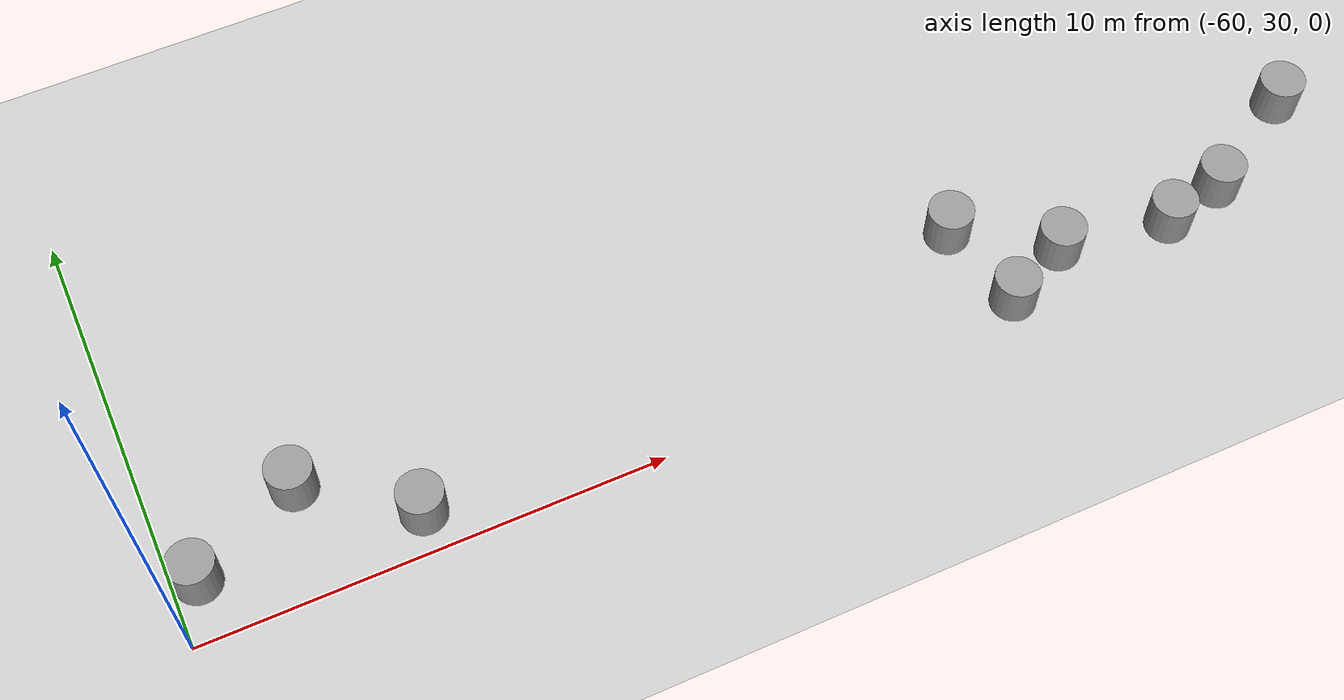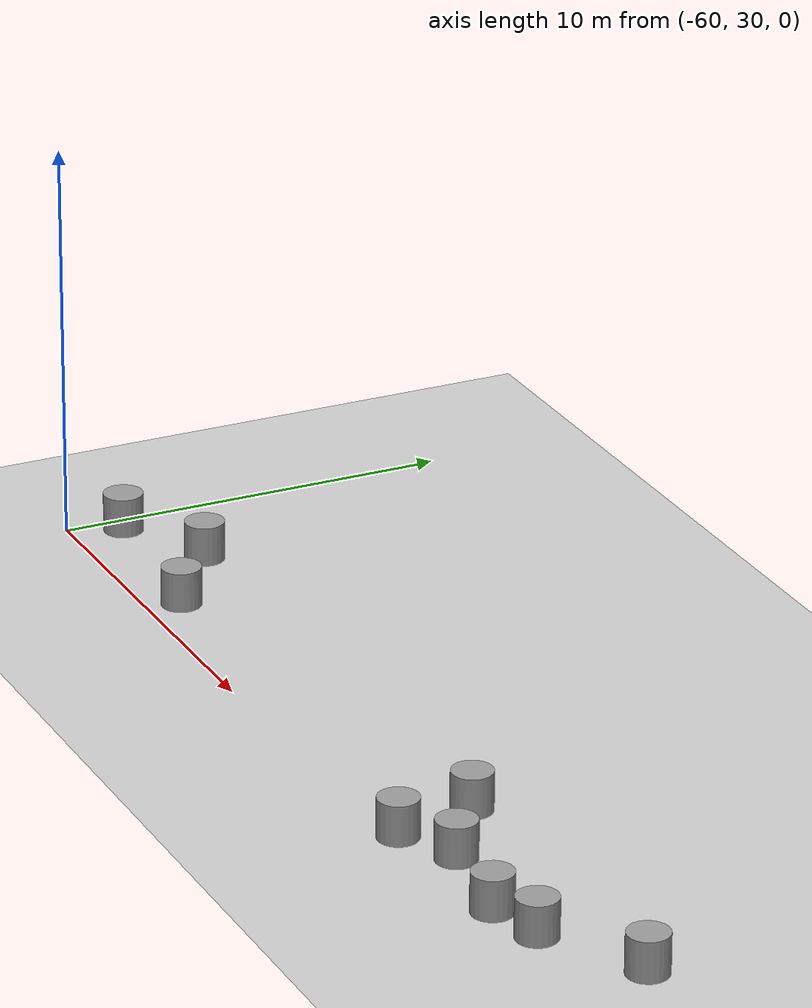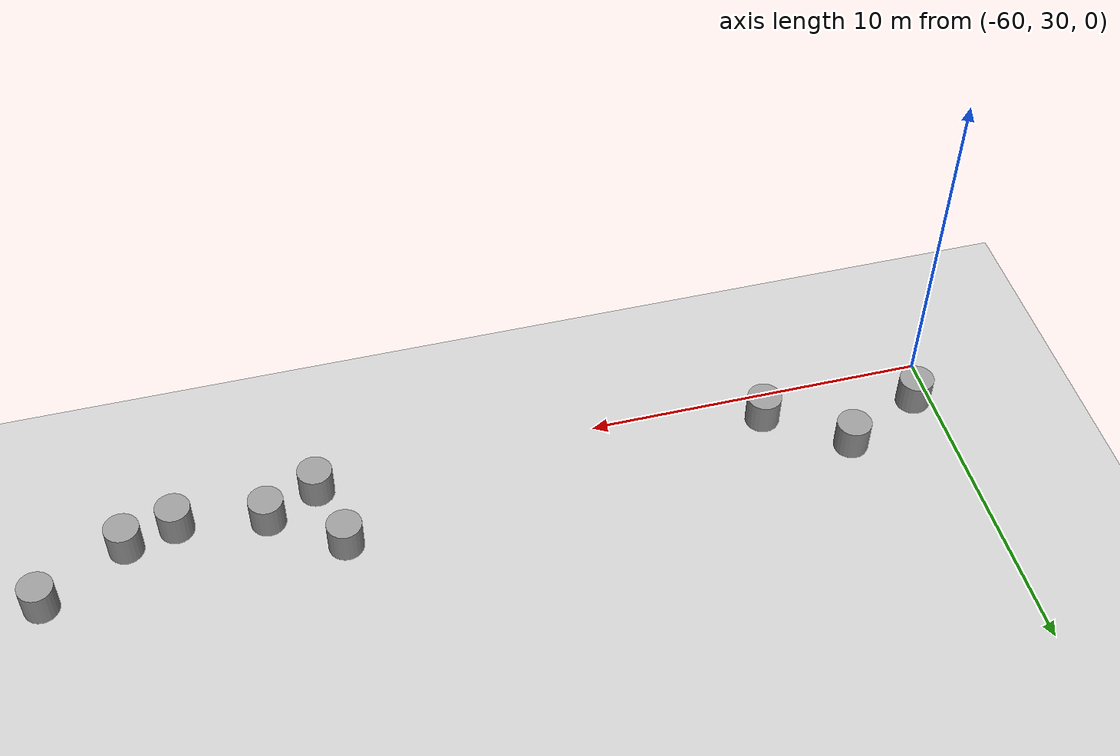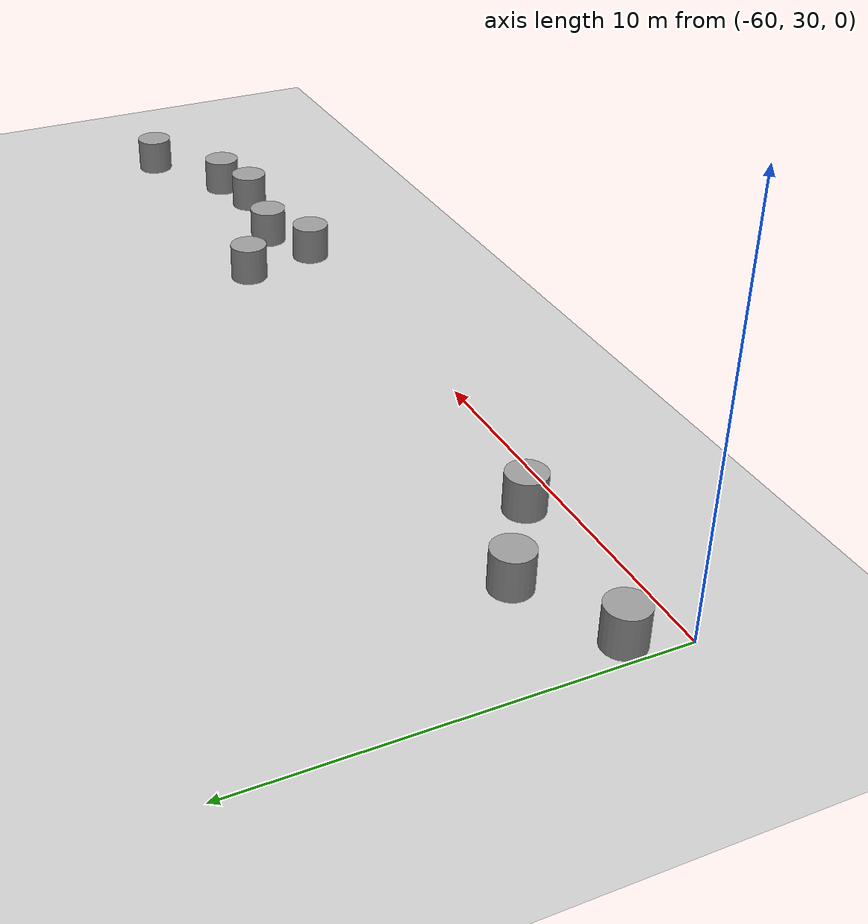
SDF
<sdf version="1.7">
 <world name="default">
  <model name="ground_plane">
   <static>1</static>
   <link name="link">
    <collision name="collision">
     <geometry><plane><normal>0 0 1</normal><size>300 300</size></plane></geometry>
     <surface><friction><ode><mu>100</mu><mu2>50</mu2></ode></friction></surface>
    </collision>
    <visual name="visual">
     <cast_shadows>0</cast_shadows>
     <geometry><plane><normal>0 0 1</normal><size>300 300</size></plane></geometry>
     <material>
      <script><uri>file://media/materials/scripts/gazebo.material</uri><name>Gazebo/Grey</name></script>
     </material>
    </visual>
   </link>
  </model>
  <model name="unit_cylinder_14">
   <pose>-37.7671 30.699 0.499883 0 -0 0</pose>
   <link name="link">
    <inertial>
     <mass>1</mass>
     <inertia><ixx>0.145833</ixx><ixy>0</ixy><ixz>0</ixz><iyy>0.145833</iyy><iyz>0</iyz><izz>0.125</izz></inertia>
    </inertial>
    <collision name="collision">
     <geometry><cylinder><radius>0.5</radius><length>1</length></cylinder></geometry>
    </collision>
    <visual name="visual">
     <geometry><cylinder><radius>0.5</radius><length>1</length></cylinder></geometry>
     <material>
      <script><name>Gazebo/Grey</name><uri>file://media/materials/scripts/gazebo.material</uri></script>
     </material>
    </visual>
   </link>
  </model>
  <model name="unit_cylinder_15">
   <pose>-36.3359 31.0542 0.499883 0 -0 0.00178</pose>
   <link name="link">
    <inertial>
     <mass>1</mass>
     <inertia><ixx>0.145833</ixx><ixy>0</ixy><ixz>0</ixz><iyy>0.145833</iyy><iyz>0</iyz><izz>0.125</izz></inertia>
    </inertial>
    <collision name="collision">
     <geometry><cylinder><radius>0.5</radius><length>1</length></cylinder></geometry>
    </collision>
    <visual name="visual">
     <geometry><cylinder><radius>0.5</radius><length>1</length></cylinder></geometry>
     <material>
      <script><name>Gazebo/Grey</name><uri>file://media/materials/scripts/gazebo.material</uri></script>
     </material>
    </visual>
   </link>
  </model>
  <model name="unit_cylinder_17">
   <pose>-40.2876 31.0676 0.499883 0 -0 0</pose>
   <link name="link">
    <inertial>
     <mass>1</mass>
     <inertia><ixx>0.145833</ixx><ixy>0</ixy><ixz>0</ixz><iyy>0.145833</iyy><iyz>0</iyz><izz>0.125</izz></inertia>
    </inertial>
    <collision name="collision">
     <geometry><cylinder><radius>0.5</radius><length>1</length></cylinder></geometry>
    </collision>
    <visual name="visual">
     <geometry><cylinder><radius>0.5</radius><length>1</length></cylinder></geometry>
     <material>
      <script><name>Gazebo/Grey</name><uri>file://media/materials/scripts/gazebo.material</uri></script>
     </material>
    </visual>
   </link>
  </model>
  <model name="unit_cylinder_18">
   <pose>-41.7746 30.3646 0.499883 0 -0 0</pose>
   <link name="link">
    <inertial>
     <mass>1</mass>
     <inertia><ixx>0.145833</ixx><ixy>0</ixy><ixz>0</ixz><iyy>0.145833</iyy><iyz>0</iyz><izz>0.125</izz></inertia>
    </inertial>
    <collision name="collision">
     <geometry><cylinder><radius>0.5</radius><length>1</length></cylinder></geometry>
    </collision>
    <visual name="visual">
     <geometry><cylinder><radius>0.5</radius><length>1</length></cylinder></geometry>
     <material>
      <script><name>Gazebo/Grey</name><uri>file://media/materials/scripts/gazebo.material</uri></script>
     </material>
    </visual>
   </link>
  </model>
  <model name="unit_cylinder_19">
   <pose>-54.9089 30.8669 0.499883 0 -0 0</pose>
   <link name="link">
    <inertial>
     <mass>1</mass>
     <inertia><ixx>0.145833</ixx><ixy>0</ixy><ixz>0</ixz><iyy>0.145833</iyy><iyz>0</iyz><izz>0.125</izz></inertia>
    </inertial>
    <collision name="collision">
     <geometry><cylinder><radius>0.5</radius><length>1</length></cylinder></geometry>
    </collision>
    <visual name="visual">
     <geometry><cylinder><radius>0.5</radius><length>1</length></cylinder></geometry>
     <material>
      <script><name>Gazebo/Grey</name><uri>file://media/materials/scripts/gazebo.material</uri></script>
     </material>
    </visual>
   </link>
  </model>
  <model name="unit_cylinder_22">
   <pose>-59.4691 31.2926 0.499883 0 -0 0</pose>
   <link name="link">
    <inertial>
     <mass>1</mass>
     <inertia><ixx>0.145833</ixx><ixy>0</ixy><ixz>0</ixz><iyy>0.145833</iyy><iyz>0</iyz><izz>0.125</izz></inertia>
    </inertial>
    <collision name="collision">
     <geometry><cylinder><radius>0.5</radius><length>1</length></cylinder></geometry>
    </collision>
    <visual name="visual">
     <geometry><cylinder><radius>0.5</radius><length>1</length></cylinder></geometry>
     <material>
      <script><name>Gazebo/Grey</name><uri>file://media/materials/scripts/gazebo.material</uri></script>
     </material>
    </visual>
   </link>
  </model>
  <model name="unit_cylinder_23">
   <pose>-57.0882 32.4362 0.499883 0 -0 0</pose>
   <link name="link">
    <inertial>
     <mass>1</mass>
     <inertia><ixx>0.145833</ixx><ixy>0</ixy><ixz>0</ixz><iyy>0.145833</iyy><iyz>0</iyz><izz>0.125</izz></inertia>
    </inertial>
    <collision name="collision">
     <geometry><cylinder><radius>0.5</radius><length>1</length></cylinder></geometry>
    </collision>
    <visual name="visual">
     <geometry><cylinder><radius>0.5</radius><length>1</length></cylinder></geometry>
     <material>
      <script><name>Gazebo/Grey</name><uri>file://media/materials/scripts/gazebo.material</uri></script>
     </material>
    </visual>
   </link>
  </model>
  <model name="unit_cylinder_63">
   <pose>-42.2551 32.4169 0.499883 0 -0 0</pose>
   <link name="link">
    <inertial>
     <mass>1</mass>
     <inertia><ixx>0.145833</ixx><ixy>0</ixy><ixz>0</ixz><iyy>0.145833</iyy><iyz>0</iyz><izz>0.125</izz></inertia>
    </inertial>
    <collision name="collision">
     <geometry><cylinder><radius>0.5</radius><length>1</length></cylinder></geometry>
    </collision>
    <visual name="visual">
     <geometry><cylinder><radius>0.5</radius><length>1</length></cylinder></geometry>
     <material>
      <script><name>Gazebo/Grey</name><uri>file://media/materials/scripts/gazebo.material</uri></script>
     </material>
    </visual>
   </link>
  </model>
  <model name="unit_cylinder_96">
   <pose>-33.9339 32.46 0.499883 0 -0 0</pose>
   <link name="link">
    <inertial>
     <mass>1</mass>
     <inertia><ixx>0.145833</ixx><ixy>0</ixy><ixz>0</ixz><iyy>0.145833</iyy><iyz>0</iyz><izz>0.125</izz></inertia>
    </inertial>
    <collision name="collision">
     <geometry><cylinder><radius>0.5</radius><length>1</length></cylinder></geometry>
    </collision>
    <visual name="visual">
     <geometry><cylinder><radius>0.5</radius><length>1</length></cylinder></geometry>
     <material>
      <script><name>Gazebo/Grey</name><uri>file://media/materials/scripts/gazebo.material</uri></script>
     </material>
    </visual>
   </link>
  </model>
 </world>
</sdf>
